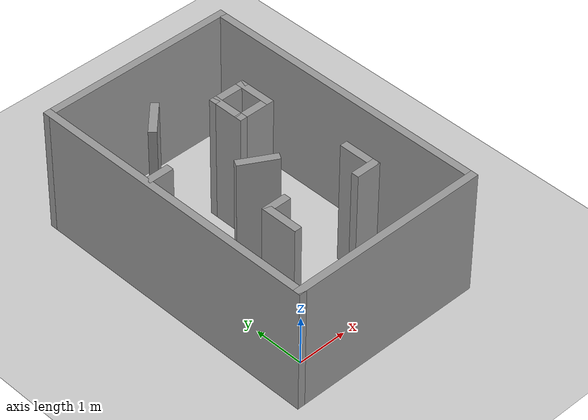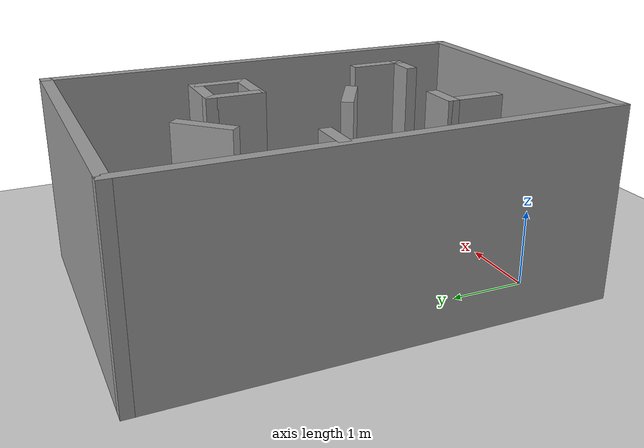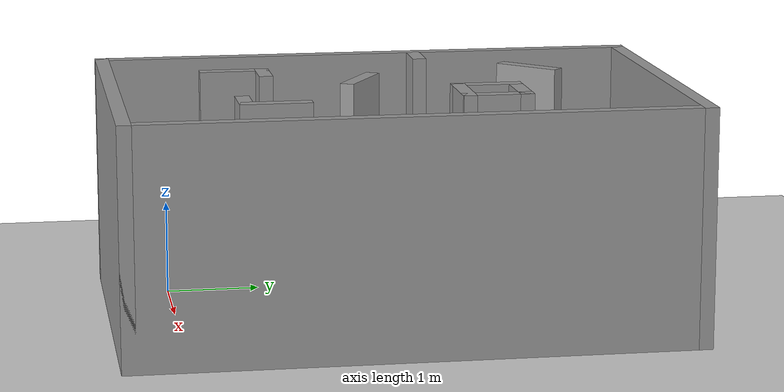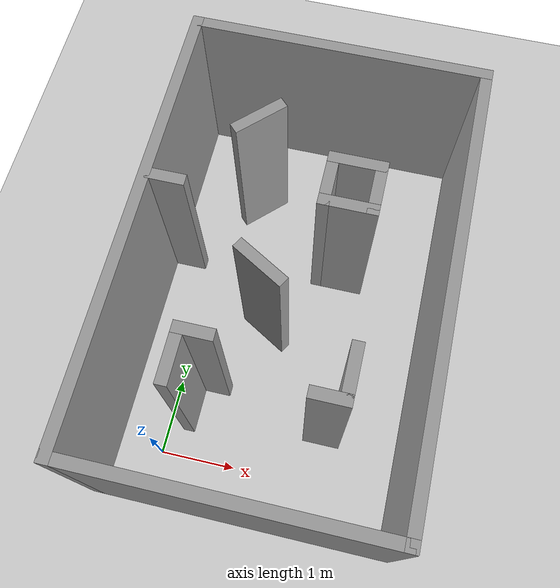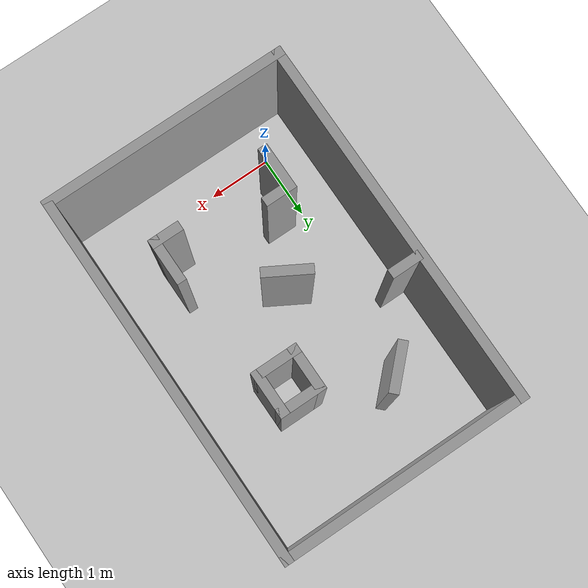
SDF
<sdf version="1.7">
 <world name="default">
  <plugin name="gazebo_ros_state" filename="libgazebo_ros_state.so">
   <ros><remapping>model_states:=model_states</remapping><remapping>link_states:=link_states</remapping></ros>
   <update_rate>1.0</update_rate>
  </plugin>
  <light name="sun" type="directional">
   <pose>0 0 10 0 -0 0</pose>
   <diffuse>0.8 0.8 0.8 1</diffuse>
   <specular>0.2 0.2 0.2 1</specular>
   <attenuation>
    <range>1000</range>
    <constant>0.9</constant>
    <linear>0.01</linear>
    <quadratic>0.001</quadratic>
   </attenuation>
   <direction>-0.5 0.1 -0.9</direction>
   <spot><inner_angle>0</inner_angle><outer_angle>0</outer_angle><falloff>0</falloff></spot>
  </light>
  <model name="ground_plane">
   <static>1</static>
   <link name="link">
    <collision name="collision">
     <geometry><plane><normal>0 0 1</normal><size>100 100</size></plane></geometry>
     <surface><friction><ode><mu>100</mu><mu2>50</mu2></ode></friction></surface>
    </collision>
    <visual name="visual">
     <cast_shadows>0</cast_shadows>
     <geometry><plane><normal>0 0 1</normal><size>100 100</size></plane></geometry>
     <material>
      <script><uri>file://media/materials/scripts/gazebo.material</uri><name>Gazebo/Grey</name></script>
     </material>
    </visual>
   </link>
  </model>
  <gravity>0 0 -9.8</gravity>
  <magnetic_field>6e-06 2.3e-05 -4.2e-05</magnetic_field>
  <atmosphere type="adiabatic"/>
  <physics type="ode">
   <max_step_size>0.001</max_step_size>
   <real_time_factor>1</real_time_factor>
   <real_time_update_rate>1000</real_time_update_rate>
  </physics>
  <scene><ambient>0.4 0.4 0.4 1</ambient><background>0.7 0.7 0.7 1</background><shadows>1</shadows></scene>
  <spherical_coordinates>
   <surface_model>EARTH_WGS84</surface_model>
   <latitude_deg>0</latitude_deg>
   <longitude_deg>0</longitude_deg>
   <elevation>0</elevation>
   <heading_deg>0</heading_deg>
  </spherical_coordinates>
  <model name="easy_ground">
   <pose>0.781056 2.29319 -0 0 -0 1.57079</pose>
   <link name="Wall_0">
    <collision name="Wall_0_Collision">
     <geometry><box><size>4 0.15 2.5</size></box></geometry>
     <pose>0 0 1.25 0 -0 0</pose>
    </collision>
    <visual name="Wall_0_Visual">
     <pose>0 0 1.25 0 -0 0</pose>
     <geometry><box><size>4 0.15 2.5</size></box></geometry>
     <material>
      <script><uri>file://media/materials/scripts/gazebo.material</uri><name>Gazebo/Grey</name></script>
      <ambient>1 1 1 1</ambient>
     </material>
     <meta><layer>0</layer></meta>
    </visual>
    <pose>-2.925 -0.4675 0 0 -0 -1.5708</pose>
   </link>
   <link name="Wall_1">
    <collision name="Wall_1_Collision">
     <geometry><box><size>6 0.15 2.5</size></box></geometry>
     <pose>0 0 1.25 0 -0 0</pose>
    </collision>
    <visual name="Wall_1_Visual">
     <pose>0 0 1.25 0 -0 0</pose>
     <geometry><box><size>6 0.15 2.5</size></box></geometry>
     <material>
      <script><uri>file://media/materials/scripts/gazebo.material</uri><name>Gazebo/Grey</name></script>
      <ambient>1 1 1 1</ambient>
     </material>
     <meta><layer>0</layer></meta>
    </visual>
    <pose>-0 -2.3925 0 0 -0 0</pose>
   </link>
   <link name="Wall_2">
    <collision name="Wall_2_Collision">
     <geometry><box><size>4 0.15 2.5</size></box></geometry>
     <pose>0 0 1.25 0 -0 0</pose>
    </collision>
    <visual name="Wall_2_Visual">
     <pose>0 0 1.25 0 -0 0</pose>
     <geometry><box><size>4 0.15 2.5</size></box></geometry>
     <material>
      <script><uri>file://media/materials/scripts/gazebo.material</uri><name>Gazebo/Grey</name></script>
      <ambient>1 1 1 1</ambient>
     </material>
     <meta><layer>0</layer></meta>
    </visual>
    <pose>2.925 -0.4675 0 0 -0 1.5708</pose>
   </link>
   <link name="Wall_21">
    <collision name="Wall_21_Collision">
     <geometry><box><size>0.5 0.15 2.5</size></box></geometry>
     <pose>0 0 1.25 0 -0 0</pose>
    </collision>
    <visual name="Wall_21_Visual">
     <pose>0 0 1.25 0 -0 0</pose>
     <geometry><box><size>0.5 0.15 2.5</size></box></geometry>
     <material>
      <script><uri>file://media/materials/scripts/gazebo.material</uri><name>Gazebo/Grey</name></script>
      <ambient>1 1 1 1</ambient>
     </material>
     <meta><layer>0</layer></meta>
    </visual>
    <pose>0.555 1.1925 0 0 -0 -1.5708</pose>
   </link>
   <link name="Wall_25">
    <collision name="Wall_25_Collision">
     <geometry><box><size>0.75 0.15 2.5</size></box></geometry>
     <pose>0 0 1.25 0 -0 0</pose>
    </collision>
    <visual name="Wall_25_Visual">
     <pose>0 0 1.25 0 -0 0</pose>
     <geometry><box><size>0.75 0.15 2.5</size></box></geometry>
     <material>
      <script><uri>file://media/materials/scripts/gazebo.material</uri><name>Gazebo/Grey</name></script>
      <ambient>1 1 1 1</ambient>
     </material>
     <meta><layer>0</layer></meta>
    </visual>
    <pose>0.675 -1.0325 0 0 -0 -1.5708</pose>
   </link>
   <link name="Wall_26">
    <collision name="Wall_26_Collision">
     <geometry><box><size>0.75 0.15 2.5</size></box></geometry>
     <pose>0 0 1.25 0 -0 0</pose>
    </collision>
    <visual name="Wall_26_Visual">
     <pose>0 0 1.25 0 -0 0</pose>
     <geometry><box><size>0.75 0.15 2.5</size></box></geometry>
     <material>
      <script><uri>file://media/materials/scripts/gazebo.material</uri><name>Gazebo/Grey</name></script>
      <ambient>1 1 1 1</ambient>
     </material>
     <meta><layer>0</layer></meta>
    </visual>
    <pose>0.975 -1.3325 0 0 -0 0</pose>
   </link>
   <link name="Wall_27">
    <collision name="Wall_27_Collision">
     <geometry><box><size>0.75 0.15 2.5</size></box></geometry>
     <pose>0 0 1.25 0 -0 0</pose>
    </collision>
    <visual name="Wall_27_Visual">
     <pose>0 0 1.25 0 -0 0</pose>
     <geometry><box><size>0.75 0.15 2.5</size></box></geometry>
     <material>
      <script><uri>file://media/materials/scripts/gazebo.material</uri><name>Gazebo/Grey</name></script>
      <ambient>1 1 1 1</ambient>
     </material>
     <meta><layer>0</layer></meta>
    </visual>
    <pose>1.275 -1.0325 0 0 -0 1.5708</pose>
   </link>
   <link name="Wall_28">
    <collision name="Wall_28_Collision">
     <geometry><box><size>0.75 0.15 2.5</size></box></geometry>
     <pose>0 0 1.25 0 -0 0</pose>
    </collision>
    <visual name="Wall_28_Visual">
     <pose>0 0 1.25 0 -0 0</pose>
     <geometry><box><size>0.75 0.15 2.5</size></box></geometry>
     <material>
      <script><uri>file://media/materials/scripts/gazebo.material</uri><name>Gazebo/Grey</name></script>
      <ambient>1 1 1 1</ambient>
     </material>
     <meta><layer>0</layer></meta>
    </visual>
    <pose>0.975 -0.7325 0 0 -0 3.14159</pose>
   </link>
   <link name="Wall_3">
    <collision name="Wall_3_Collision">
     <geometry><box><size>6 0.15 2.5</size></box></geometry>
     <pose>0 0 1.25 0 -0 0</pose>
    </collision>
    <visual name="Wall_3_Visual">
     <pose>0 0 1.25 0 -0 0</pose>
     <geometry><box><size>6 0.15 2.5</size></box></geometry>
     <material>
      <script><uri>file://media/materials/scripts/gazebo.material</uri><name>Gazebo/Grey</name></script>
      <ambient>1 1 1 1</ambient>
     </material>
     <meta><layer>0</layer></meta>
    </visual>
    <pose>-0 1.4575 0 0 -0 3.14159</pose>
   </link>
   <link name="Wall_30">
    <collision name="Wall_30_Collision">
     <geometry><box><size>0.75 0.15 2.5</size></box></geometry>
     <pose>0 0 1.25 0 -0 0</pose>
    </collision>
    <visual name="Wall_30_Visual">
     <pose>0 0 1.25 0 -0 0</pose>
     <geometry><box><size>0.75 0.15 2.5</size></box></geometry>
     <material>
      <script><uri>file://media/materials/scripts/gazebo.material</uri><name>Gazebo/Grey</name></script>
      <ambient>1 1 1 1</ambient>
     </material>
     <meta><layer>0</layer></meta>
    </visual>
    <pose>1.65713 0.305368 0 0 -0 -0.785398</pose>
   </link>
   <link name="Wall_33">
    <collision name="Wall_33_Collision">
     <geometry><box><size>0.75 0.15 2.5</size></box></geometry>
     <pose>0 0 1.25 0 -0 0</pose>
    </collision>
    <visual name="Wall_33_Visual">
     <pose>0 0 1.25 0 -0 0</pose>
     <geometry><box><size>0.75 0.15 2.5</size></box></geometry>
     <material>
      <script><uri>file://media/materials/scripts/gazebo.material</uri><name>Gazebo/Grey</name></script>
      <ambient>1 1 1 1</ambient>
     </material>
     <meta><layer>0</layer></meta>
    </visual>
    <pose>-1.555 0.5075 0 0 -0 0</pose>
   </link>
   <link name="Wall_34">
    <collision name="Wall_34_Collision">
     <geometry><box><size>0.5 0.15 2.5</size></box></geometry>
     <pose>0 0 1.25 0 -0 0</pose>
    </collision>
    <visual name="Wall_34_Visual">
     <pose>0 0 1.25 0 -0 0</pose>
     <geometry><box><size>0.5 0.15 2.5</size></box></geometry>
     <material>
      <script><uri>file://media/materials/scripts/gazebo.material</uri><name>Gazebo/Grey</name></script>
      <ambient>1 1 1 1</ambient>
     </material>
     <meta><layer>0</layer></meta>
    </visual>
    <pose>-1.255 0.3325 0 0 -0 -1.5708</pose>
   </link>
   <link name="Wall_36">
    <collision name="Wall_36_Collision">
     <geometry><box><size>0.75 0.15 2.5</size></box></geometry>
     <pose>0 0 1.25 0 -0 0</pose>
    </collision>
    <visual name="Wall_36_Visual">
     <pose>0 0 1.25 0 -0 0</pose>
     <geometry><box><size>0.75 0.15 2.5</size></box></geometry>
     <material>
      <script><uri>file://media/materials/scripts/gazebo.material</uri><name>Gazebo/Grey</name></script>
      <ambient>1 1 1 1</ambient>
     </material>
     <meta><layer>0</layer></meta>
    </visual>
    <pose>-0.285 -0.192692 0 0 -0 1.0472</pose>
   </link>
   <link name="Wall_39">
    <collision name="Wall_39_Collision">
     <geometry><box><size>0.5 0.15 2.5</size></box></geometry>
     <pose>0 0 1.25 0 -0 0</pose>
    </collision>
    <visual name="Wall_39_Visual">
     <pose>0 0 1.25 0 -0 0</pose>
     <geometry><box><size>0.5 0.15 2.5</size></box></geometry>
     <material>
      <script><uri>file://media/materials/scripts/gazebo.material</uri><name>Gazebo/Grey</name></script>
      <ambient>1 1 1 1</ambient>
     </material>
     <meta><layer>0</layer></meta>
    </visual>
    <pose>-1.635 -1.2975 0 0 -0 -1.5708</pose>
   </link>
   <link name="Wall_40">
    <collision name="Wall_40_Collision">
     <geometry><box><size>0.75 0.15 2.5</size></box></geometry>
     <pose>0 0 1.25 0 -0 0</pose>
    </collision>
    <visual name="Wall_40_Visual">
     <pose>0 0 1.25 0 -0 0</pose>
     <geometry><box><size>0.75 0.15 2.5</size></box></geometry>
     <material>
      <script><uri>file://media/materials/scripts/gazebo.material</uri><name>Gazebo/Grey</name></script>
      <ambient>1 1 1 1</ambient>
     </material>
     <meta><layer>0</layer></meta>
    </visual>
    <pose>-1.335 -1.4725 0 0 -0 0</pose>
   </link>
   <static>1</static>
  </model>
 </world>
</sdf>
